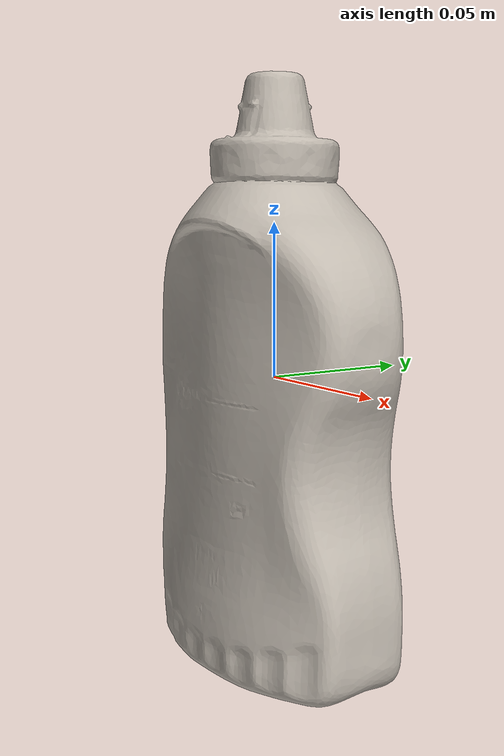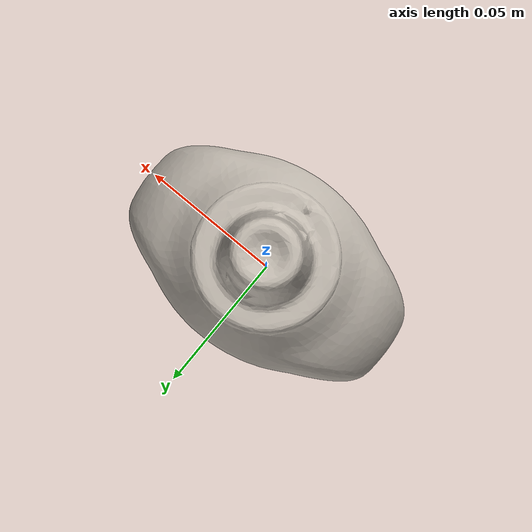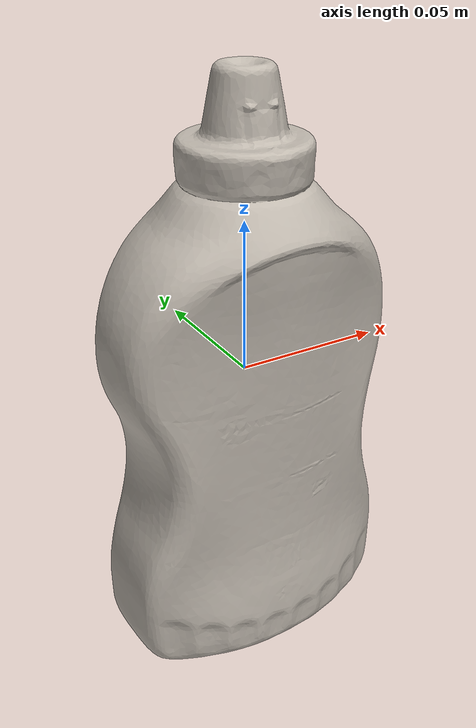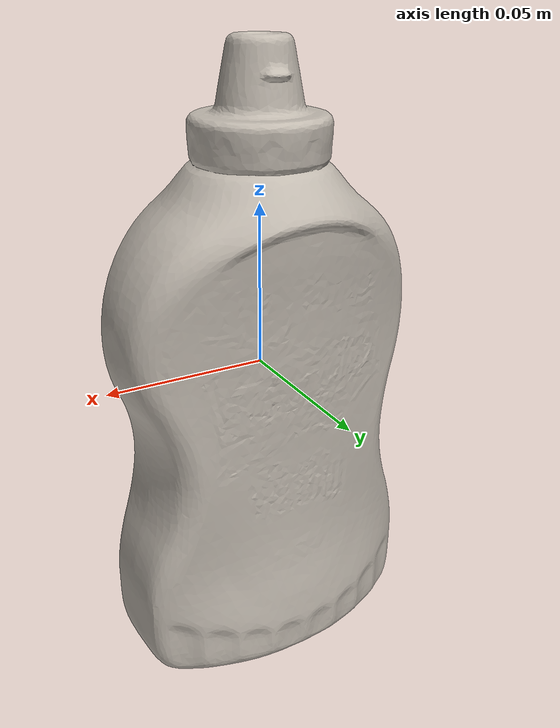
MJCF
<mujoco model="mustard_bottle">
  <default>
    <default class="visual">
      <geom group="1" type="mesh" contype="0" conaffinity="0"/>
    </default>
    <default class="collision">
      <geom group="0" type="mesh"/>
    </default>
  </default>
  <asset>
    <texture type="2d" name="mustard_bottle" file="mustard_bottle.png"/>
    <material name="mustard_bottle" texture="mustard_bottle" specular="0.4000000000000001" shininess="0.001"/>
    <mesh name="mustard_bottle" file="mustard_bottle.obj"/>
  </asset>
  <worldbody>
    <body>
    <body name="object">
      <geom material="mustard_bottle" mesh="mustard_bottle" class="visual"/>
      <geom mesh="mustard_bottle" class="collision"/>
    </body>
      <site rgba="0 0 0 0" size="0.005" pos="0 0 -0.1" name="bottom_site" />
      <site rgba="0 0 0 0" size="0.005" pos="0 0 0.04" name="top_site" />
      <site rgba="0 0 0 0" size="0.005" pos="0.005 0.005 0" name="horizontal_radius_site" />
   </body>
  </worldbody>
</mujoco>
